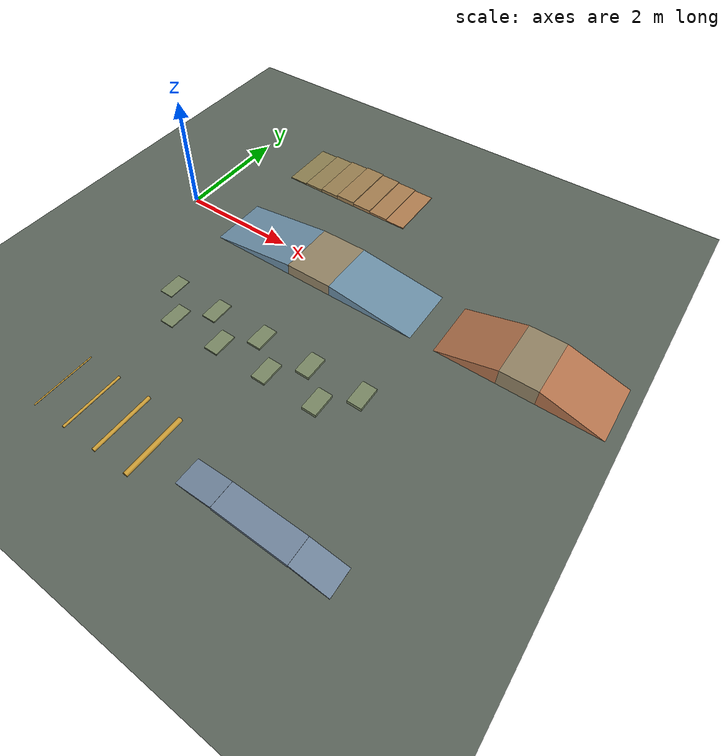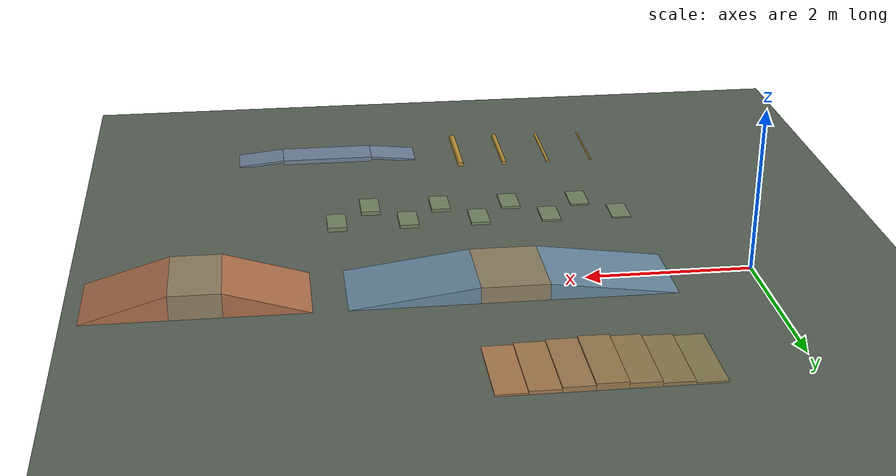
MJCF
<?xml version="1.0"?>
<!-- 小车越野测试场：X 向前、Y 向左、Z 向上，所有尺寸单位为 m。
     原点半径 0.8 m 内保留平地；地形为固定碰撞体，不含机器人。
     中路 y=0：连续上下坡；左路 y=2：阶梯；右路 y=-2：交错凸块。
     后方 y=-4：横向路障和窄桥。机器人仍由仿真节点单独加载。 -->
<mujoco model="empty">

  <!-- 20 m/s 弹丸每步移动 2 mm，细化物理步长以解析摩擦轮接触。 -->
  <option timestep="0.0001" integrator="implicitfast" gravity="0 0 -9.81" iterations="100"/>

  <!-- 全场打亮：headlight 是跟着相机走的头灯，把它的 ambient/diffuse 拉高，
       任何角度、任何面都不会落进死黑里；场景里那盏平行光只作方向补光。
       MuJoCo 的 headlight 默认 ambient 0.1 / diffuse 0.4，偏暗。 -->
  <visual>
    <!-- 近裁剪面按场景 extent 缩放；小车第一人称需要保留近处厘米级几何。 -->
    <map znear="0.001"/>
    <headlight ambient="0.6 0.6 0.6" diffuse="0.6 0.6 0.6" specular="0.1 0.1 0.1"/>
  </visual>

  <asset>
    <texture name="terrain_grid" type="2d" builtin="checker" width="512" height="512"
             rgb1="0.32 0.36 0.32" rgb2="0.40 0.44 0.40"/>
    <material name="terrain_ground" texture="terrain_grid" texrepeat="24 24" texuniform="true"/>
    <!-- 封闭三棱柱：底面 z=0，坡顶从 x=0 的 0 上升至 x=1 的 1；各实例用 scale 定尺寸，三角形按外法线逆时针排列。 -->
    <mesh name="ramp_gentle" scale="1.5 1.0 0.20"
          vertex="0 -0.5 0  1 -0.5 0  1 -0.5 1  0 0.5 0  1 0.5 0  1 0.5 1"
          face="0 1 2  3 5 4  0 4 1  0 3 4  1 5 2  1 4 5  0 5 3  0 2 5"/>
    <mesh name="ramp_steep" scale="1.0 1.0 0.30"
          vertex="0 -0.5 0  1 -0.5 0  1 -0.5 1  0 0.5 0  1 0.5 0  1 0.5 1"
          face="0 1 2  3 5 4  0 4 1  0 3 4  1 5 2  1 4 5  0 5 3  0 2 5"/>
  </asset>

  <default>
    <default class="terrain">
      <geom friction="1.0 0.02 0.001" rgba="0.58 0.52 0.40 1"/>
    </default>
    <default class="box">
      <geom type="box" density="500" rgba="0.65 0.65 0.65 1"/>
    </default>
    <default class="cylinder">
      <geom type="cylinder" density="500" rgba="0.45 0.50 0.55 1"/>
    </default>
    <default class="sphere">
      <geom type="sphere" density="500" rgba="0.75 0.55 0.35 1"/>
    </default>
    <default class="hinge">
      <joint type="hinge" damping="0.02" armature="0.001"/>
    </default>
  </default>

  <worldbody>
    <light name="sun" pos="0 -3 4" dir="0 0 -1" diffuse="0.8 0.8 0.8"/>
    <geom name="ground" type="plane" size="8 6 0.05" material="terrain_ground" friction="1.0 0.02 0.001"/>

    <!-- 中路：7.6° 缓坡与 16.7° 陡坡，各有平台和对应下坡，起终点均接地。 -->
    <geom name="gentle_up" class="terrain" type="mesh" pos="1 0 0" mesh="ramp_gentle" rgba="0.42 0.56 0.65 1"/>
    <geom name="gentle_platform" class="terrain" type="box" pos="2.9 0 0.10" size="0.4 0.5 0.10" />
    <geom name="gentle_down" class="terrain" type="mesh" pos="4.8 0 0" mesh="ramp_gentle" euler="0 0 180" rgba="0.42 0.56 0.65 1"/>
    <geom name="steep_up" class="terrain" type="mesh" pos="5.2 0 0" mesh="ramp_steep" rgba="0.70 0.45 0.30 1"/>
    <geom name="steep_platform" class="terrain" type="box" pos="6.5 0 0.15" size="0.3 0.5 0.15" />
    <geom name="steep_down" class="terrain" type="mesh" pos="7.8 0 0" mesh="ramp_steep" euler="0 0 180" rgba="0.70 0.45 0.30 1"/>

    <!-- 左路：每级上升 2 cm，踏面长 0.35 m；最高 8 cm，然后逐级下降。 -->
    <geom name="stair_1" class="terrain" type="box" pos="1.175 2 0.010" size="0.175 0.5 0.010" rgba="0.550 0.50 0.32 1"/>
    <geom name="stair_2" class="terrain" type="box" pos="1.525 2 0.020" size="0.175 0.5 0.020" rgba="0.575 0.50 0.32 1"/>
    <geom name="stair_3" class="terrain" type="box" pos="1.875 2 0.030" size="0.175 0.5 0.030" rgba="0.600 0.50 0.32 1"/>
    <geom name="stair_4" class="terrain" type="box" pos="2.225 2 0.040" size="0.175 0.5 0.040" rgba="0.625 0.50 0.32 1"/>
    <geom name="stair_5" class="terrain" type="box" pos="2.575 2 0.030" size="0.175 0.5 0.030" rgba="0.650 0.50 0.32 1"/>
    <geom name="stair_6" class="terrain" type="box" pos="2.925 2 0.020" size="0.175 0.5 0.020" rgba="0.675 0.50 0.32 1"/>
    <geom name="stair_7" class="terrain" type="box" pos="3.275 2 0.010" size="0.175 0.5 0.010" rgba="0.700 0.50 0.32 1"/>

    <!-- 右路：左右轮交错越障，凸块顶面高度 1.5～5 cm，块间保留平地。 -->
    <geom name="offset_block_1" class="terrain" type="box" pos="1.200 -1.780 0.0075" size="0.12 0.20 0.0075" rgba="0.48 0.54 0.40 1"/>
    <geom name="offset_block_2" class="terrain" type="box" pos="1.650 -2.220 0.0100" size="0.12 0.20 0.0100" rgba="0.48 0.54 0.40 1"/>
    <geom name="offset_block_3" class="terrain" type="box" pos="2.100 -1.780 0.0125" size="0.12 0.20 0.0125" rgba="0.48 0.54 0.40 1"/>
    <geom name="offset_block_4" class="terrain" type="box" pos="2.550 -2.220 0.0150" size="0.12 0.20 0.0150" rgba="0.48 0.54 0.40 1"/>
    <geom name="offset_block_5" class="terrain" type="box" pos="3.000 -1.780 0.0175" size="0.12 0.20 0.0175" rgba="0.48 0.54 0.40 1"/>
    <geom name="offset_block_6" class="terrain" type="box" pos="3.450 -2.220 0.0200" size="0.12 0.20 0.0200" rgba="0.48 0.54 0.40 1"/>
    <geom name="offset_block_7" class="terrain" type="box" pos="3.900 -1.780 0.0225" size="0.12 0.20 0.0225" rgba="0.48 0.54 0.40 1"/>
    <geom name="offset_block_8" class="terrain" type="box" pos="4.350 -2.220 0.0250" size="0.12 0.20 0.0250" rgba="0.48 0.54 0.40 1"/>
    <geom name="offset_block_9" class="terrain" type="box" pos="4.800 -1.780 0.0275" size="0.12 0.20 0.0275" rgba="0.48 0.54 0.40 1"/>

    <!-- y=-4 沿 +X 行驶：圆弧减速带逐渐增高，随后通过宽 0.42 m 的低桥。 -->
    <geom name="round_bump_1" class="terrain" type="cylinder" pos="1.20 -4 0" size="0.010 0.5" euler="90 0 0" rgba="0.78 0.60 0.20 1"/>
    <geom name="round_bump_2" class="terrain" type="cylinder" pos="1.80 -4 0" size="0.020 0.5" euler="90 0 0" rgba="0.78 0.60 0.20 1"/>
    <geom name="round_bump_3" class="terrain" type="cylinder" pos="2.40 -4 0" size="0.030 0.5" euler="90 0 0" rgba="0.78 0.60 0.20 1"/>
    <geom name="round_bump_4" class="terrain" type="cylinder" pos="3.00 -4 0" size="0.040 0.5" euler="90 0 0" rgba="0.78 0.60 0.20 1"/>
    <geom name="bridge_entry" class="terrain" type="box" pos="3.900 -4 0.015074" size="0.301496 0.21 0.015" euler="0 -5.710593 0" rgba="0.45 0.53 0.62 1"/>
    <geom name="bridge_exit" class="terrain" type="box" pos="5.700 -4 0.015074" size="0.301496 0.21 0.015" euler="0 5.710593 0" rgba="0.45 0.53 0.62 1"/>
    <geom name="narrow_bridge" class="terrain" type="box" pos="4.8 -4 0.03" size="0.6 0.21 0.03" rgba="0.45 0.53 0.62 1"/>
  </worldbody>

</mujoco>
